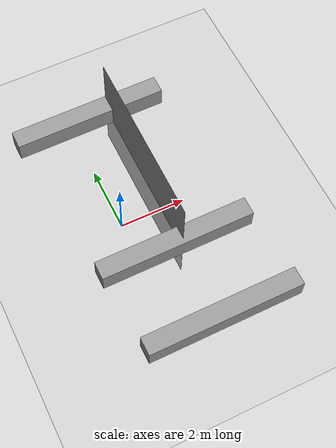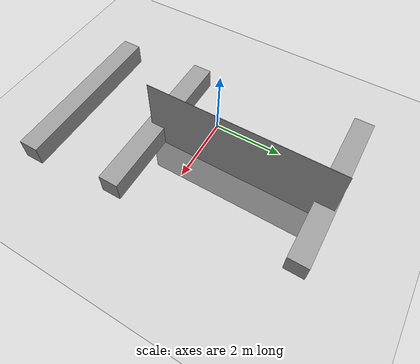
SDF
<sdf version="1.7">
 <world name="default">
  <light name="sun" type="directional">
   <pose>0 0 10 0 -0 0</pose>
   <diffuse>0.8 0.8 0.8 1</diffuse>
   <specular>0.2 0.2 0.2 1</specular>
   <attenuation>
    <range>1000</range>
    <constant>0.9</constant>
    <linear>0.01</linear>
    <quadratic>0.001</quadratic>
   </attenuation>
   <direction>-0.5 0.1 -0.9</direction>
   <spot><inner_angle>0</inner_angle><outer_angle>0</outer_angle><falloff>0</falloff></spot>
  </light>
  <model name="ground_plane">
   <static>1</static>
   <link name="link">
    <collision name="collision">
     <geometry><plane><normal>0 0 1</normal><size>100 100</size></plane></geometry>
     <surface>
      <contact><collide_bitmask>65535</collide_bitmask></contact>
      <friction><ode><mu>100</mu><mu2>50</mu2></ode></friction>
     </surface>
    </collision>
    <visual name="visual">
     <cast_shadows>0</cast_shadows>
     <geometry><plane><normal>0 0 1</normal><size>100 100</size></plane></geometry>
     <material>
      <script><uri>file://media/materials/scripts/gazebo.material</uri><name>Gazebo/Grey</name></script>
     </material>
    </visual>
   </link>
  </model>
  <gravity>0 0 -9.8</gravity>
  <magnetic_field>6e-06 2.3e-05 -4.2e-05</magnetic_field>
  <atmosphere type="adiabatic"/>
  <physics type="ode">
   <max_step_size>0.001</max_step_size>
   <real_time_factor>1</real_time_factor>
   <real_time_update_rate>1000</real_time_update_rate>
  </physics>
  <scene><ambient>0.4 0.4 0.4 1</ambient><background>0.7 0.7 0.7 1</background><shadows>1</shadows></scene>
  <spherical_coordinates>
   <surface_model>EARTH_WGS84</surface_model>
   <latitude_deg>0</latitude_deg>
   <longitude_deg>0</longitude_deg>
   <elevation>0</elevation>
   <heading_deg>0</heading_deg>
  </spherical_coordinates>
  <model name="unit_box">
   <pose>1.29452 1.2842 0.322046 -3e-06 0.000861 -0.002991</pose>
   <link name="link">
    <inertial>
     <mass>1</mass>
     <inertia>
      <ixx>0.166667</ixx>
      <ixy>0</ixy>
      <ixz>0</ixz>
      <iyy>0.166667</iyy>
      <iyz>0</iyz>
      <izz>0.166667</izz>
     </inertia>
    </inertial>
    <collision name="collision"><geometry><box><size>0.00919378 5.3985 3.67174</size></box></geometry></collision>
    <visual name="visual">
     <geometry><box><size>0.00919378 5.3985 3.67174</size></box></geometry>
     <material>
      <script><name>Gazebo/Grey</name><uri>file://media/materials/scripts/gazebo.material</uri></script>
     </material>
    </visual>
   </link>
  </model>
  <model name="unit_box_clone">
   <pose>1.08648 -1.29475 0.322046 3e-06 0.000861 0.002989</pose>
   <link name="link">
    <inertial>
     <mass>1</mass>
     <inertia>
      <ixx>0.166667</ixx>
      <ixy>0</ixy>
      <ixz>0</ixz>
      <iyy>0.166667</iyy>
      <iyz>0</iyz>
      <izz>0.166667</izz>
     </inertia>
    </inertial>
    <collision name="collision"><geometry><box><size>4.77353 0.570045 0.6482</size></box></geometry></collision>
    <visual name="visual">
     <geometry><box><size>4.77353 0.570045 0.6482</size></box></geometry>
     <material>
      <script><name>Gazebo/Grey</name><uri>file://media/materials/scripts/gazebo.material</uri></script>
     </material>
    </visual>
   </link>
  </model>
  <model name="unit_box_clone_clone">
   <pose>1.29468 -3.84426 0.322046 3e-06 0.000861 0.002991</pose>
   <link name="link">
    <inertial>
     <mass>1</mass>
     <inertia>
      <ixx>0.166667</ixx>
      <ixy>0</ixy>
      <ixz>0</ixz>
      <iyy>0.166667</iyy>
      <iyz>0</iyz>
      <izz>0.166667</izz>
     </inertia>
    </inertial>
    <collision name="collision"><geometry><box><size>4.77353 0.570045 0.6482</size></box></geometry></collision>
    <visual name="visual">
     <geometry><box><size>4.77353 0.570045 0.6482</size></box></geometry>
     <material>
      <script><name>Gazebo/Grey</name><uri>file://media/materials/scripts/gazebo.material</uri></script>
     </material>
    </visual>
   </link>
  </model>
  <model name="unit_box_clone_0">
   <pose>0.592437 3.73121 0.322046 -3e-06 -0.000861 0.002991</pose>
   <link name="link">
    <inertial>
     <mass>1</mass>
     <inertia>
      <ixx>0.166667</ixx>
      <ixy>0</ixy>
      <ixz>0</ixz>
      <iyy>0.166667</iyy>
      <iyz>0</iyz>
      <izz>0.166667</izz>
     </inertia>
    </inertial>
    <collision name="collision"><geometry><box><size>4.77353 0.570045 0.6482</size></box></geometry></collision>
    <visual name="visual">
     <geometry><box><size>4.77353 0.570045 0.6482</size></box></geometry>
     <material>
      <script><name>Gazebo/Grey</name><uri>file://media/materials/scripts/gazebo.material</uri></script>
     </material>
    </visual>
   </link>
  </model>
 </world>
</sdf>
